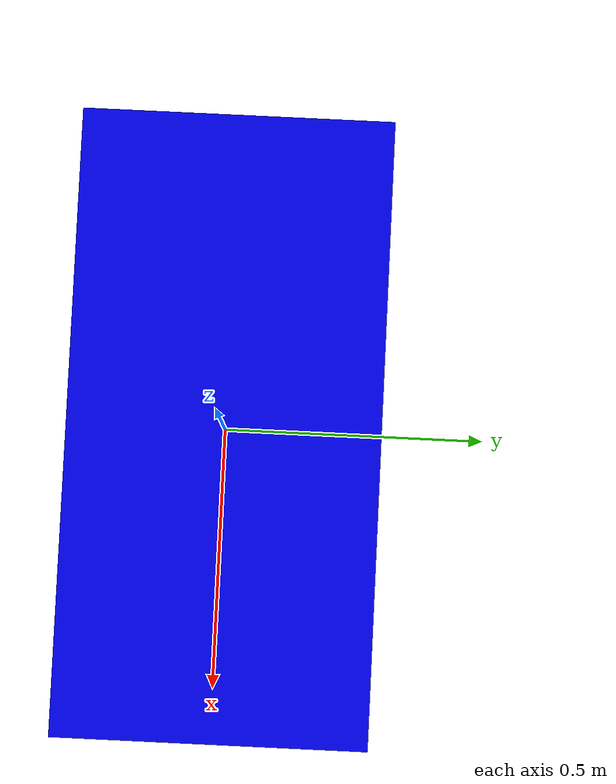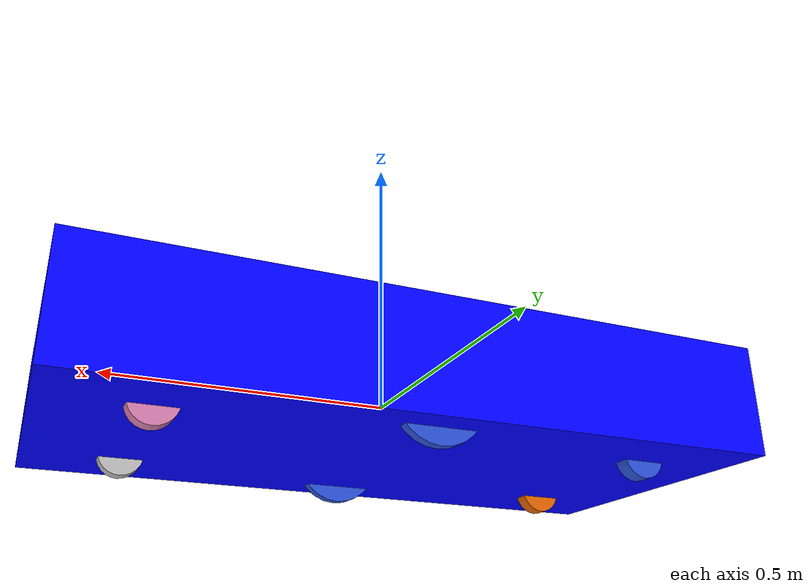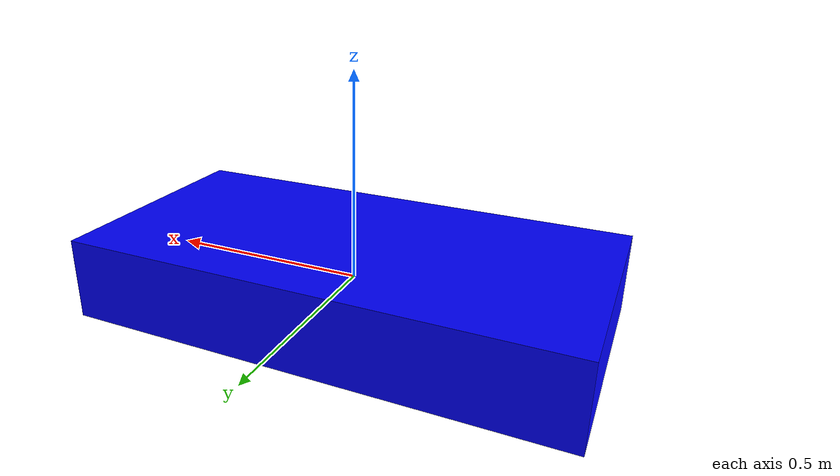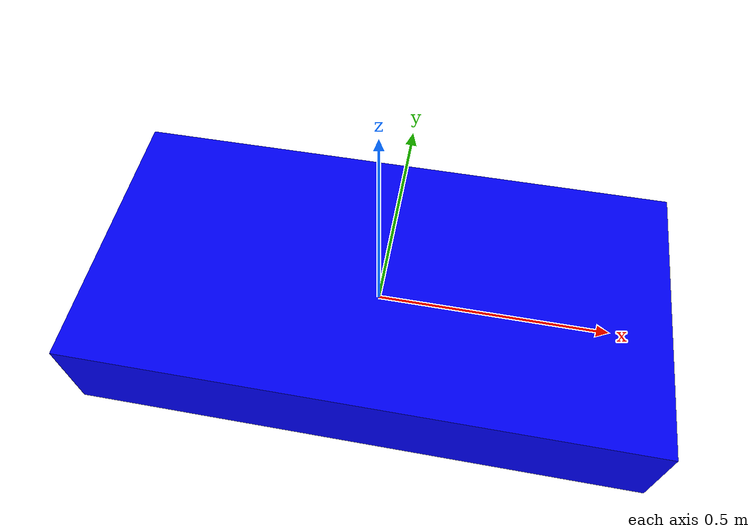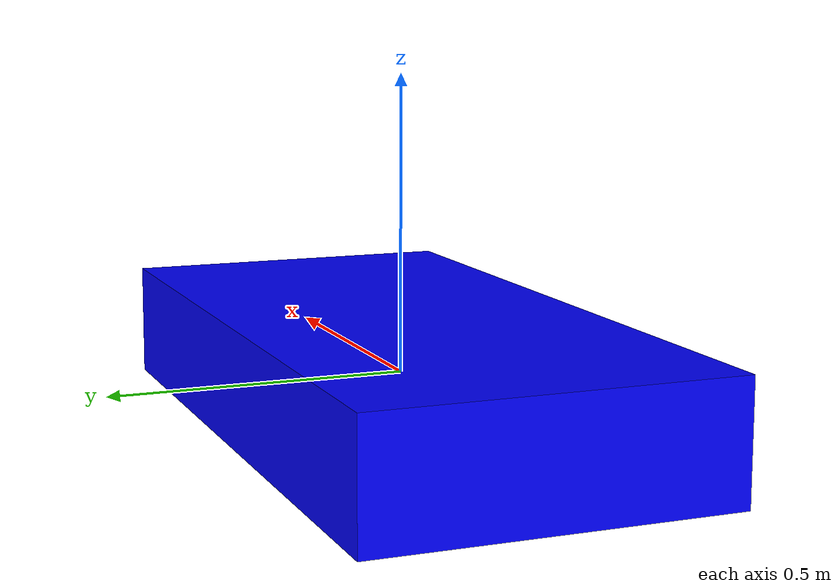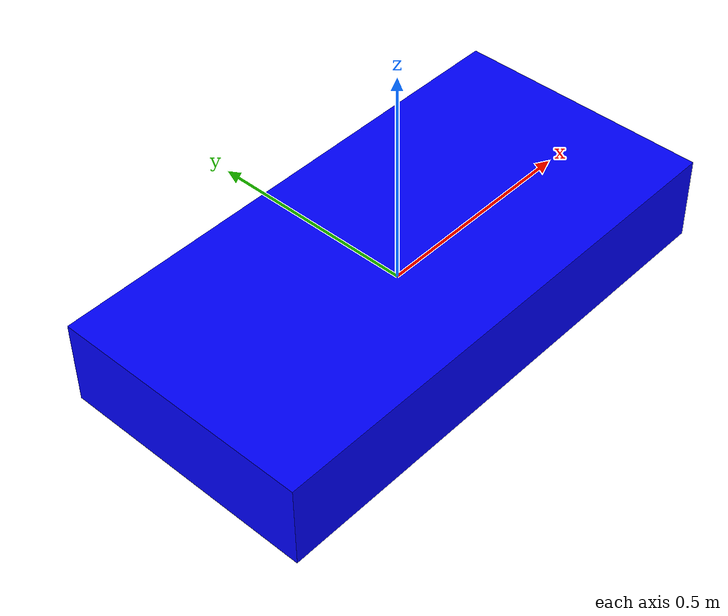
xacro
<?xml version="1.0"?>
<robot xmlns:xacro="http://www.ros.org/wiki/xacro" name="first">

  <xacro:include filename="$(find my_description)/urdf/first.gazebo" />

  <xacro:include filename="$(find my_description)/urdf/base/base.xacro"/>
  <xacro:include filename="$(find my_description)/urdf/wheels/wheel.xacro"/>
  <xacro:include filename="$(find my_description)/urdf/caster_wheels/caster_wheel.xacro"/>
  <xacro:include filename="$(find my_description)/urdf/caster_wheels/caster_wheel_holder.xacro"/>
  <xacro:include filename="$(find my_description)/urdf/caster_wheels/caster_wheel_fix_holder.xacro"/>

  <!--base-->

  <xacro:base/>

  <!--wheels-->

  <xacro:wheel prefix="left" reflect_y="1"/>
  <xacro:wheel prefix="right" reflect_y="-1"/>

  <!--caster_wheels-->

  <xacro:caster_wheel prefix="left_back" reflect_x="-1" reflect_y="1"/>
  <xacro:caster_wheel prefix="right_back" reflect_x="-1" reflect_y="-1"/>
  <xacro:caster_wheel prefix="left_front" reflect_x="1" reflect_y="1"/>
  <xacro:caster_wheel prefix="right_front" reflect_x="1" reflect_y="-1"/>

  <!-- caster_wheel_holder -->

  <xacro:caster_wheel_holder prefix="left_front" reflect_x="1"/>
  <xacro:caster_wheel_holder prefix="right_front" reflect_x="1"/>
  <xacro:caster_wheel_holder prefix="left_back" reflect_x="-1"/>
  <xacro:caster_wheel_holder prefix="right_back" reflect_x="-1"/>

  <!-- caster_wheel_fix_holder -->

  <xacro:caster_wheel_fix_holder prefix="left_front" reflect_x="1" reflect_y="1"/>
  <xacro:caster_wheel_fix_holder prefix="right_front" reflect_x="1" reflect_y="-1"/>
  <xacro:caster_wheel_fix_holder prefix="left_back" reflect_x="-1" reflect_y="1"/>
  <xacro:caster_wheel_fix_holder prefix="right_back" reflect_x="-1" reflect_y="-1"/>

</robot>

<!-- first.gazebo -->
<robot name="first" xmlns:xacro="http://www.ros.org/wiki/xacro" >

    <xacro:property name="body_color" value="Gazebo/Green"/>
    <xacro:property name="wheel_color" value="Gazebo/Blue"/>

    <gazebo>
        <plugin name="control" filename="libgazebo_ros_control.so"/>
    </gazebo>

    <gazebo reference="base_link">
        <material>${body_color}</material>
    </gazebo>

    <gazebo reference="left_wheel">
        <material>${wheel_color}</material>
    </gazebo>

    <gazebo reference="right_wheel">
        <material>${wheel_color}</material>
    </gazebo>

    <gazebo reference="left_back_caster_wheel">
        <material>${wheel_color}</material>
    </gazebo>

    <gazebo reference="left_back_holder">
        <material>${wheel_color}</material>
    </gazebo>

    <gazebo reference="left_back_fix_holder">
        <material>${wheel_color}</material>
    </gazebo>

</robot>

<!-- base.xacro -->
<robot xmlns:xacro="http://www.ros.org/wiki/xacro" name="base">

    <material name="blue">
        <color rgba="0 0 1 1"/>
    </material>

    <xacro:macro name="base">

        <link name="base_footprint"/>

        <link name="base_link">
            <visual>
                <geometry>
                    <box size="1.2 0.6 0.2"/>
                </geometry>
                <material name="blue"/>
            </visual>
            <collision>
                <geometry>
                    <box size="1.2 0.6 0.2"/>
                </geometry>
            </collision>
            <inertial>
                <mass value="10"/>
                <inertia ixx="1.0" ixy="0.0" ixz="0.0" iyy="1.0" iyz="0.0" izz="1.0"/>
            </inertial>
        </link>

        <joint name="base_link_footprint" type="fixed">
            <parent link="base_footprint"/>
            <child link="base_link"/>
            <origin xyz="0 0 0"/>
        </joint>

    </xacro:macro>
</robot>

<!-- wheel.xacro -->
<robot xmlns:xacro="http://www.ros.org/wiki/xacro" name="wheel">

    <xacro:property name="length" value="0.02" />
    <xacro:property name="radius" value="0.08" />

    <xacro:macro name="wheel" params="prefix reflect_y">
        <link name="${prefix}_wheel">
            <visual>
                <geometry>
                    <cylinder length="${length}" radius="${radius}"/>
                </geometry>
                <origin rpy="1.5707 0 0"/>
            </visual>
            <collision>
                <geometry>
                    <cylinder length="${length}" radius="${radius}"/>
                </geometry>
                <origin rpy="1.5707 0 0"/>
            </collision>
            <inertial>
                <mass value="1"/>
                <inertia ixx="1.0" ixy="0.0" ixz="0.0" iyy="1.0" iyz="0.0" izz="1.0"/>
            </inertial>
        </link>

        <joint name="${prefix}_wheel_joint" type="continuous">
            <parent link="base_link"/>
            <child link="${prefix}_wheel"/>
            <origin xyz="0 ${reflect_y*0.2335} -0.05"/>
            <axis xyz="0.0 1.0 0.0"/>
        </joint>

    </xacro:macro>
</robot>

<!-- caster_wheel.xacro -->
<robot xmlns:xacro="http://www.ros.org/wiki/xacro" name="caster_wheel">

    <xacro:property name="length" value="0.02" />
    <xacro:property name="radius" value="0.08" />

    <xacro:macro name="caster_wheel" params="prefix reflect_x reflect_y">

        <link name="${prefix}_caster_wheel">
            <visual>
                <geometry>
                    <cylinder length="0.03" radius="0.04"/>
                </geometry>
                    <origin rpy="1.5707 0 0"/>
            </visual>
            <collision>
                <geometry>
                    <cylinder length="0.03" radius="0.04"/>
                </geometry>
                    <origin rpy="1.5707 0 0"/>
            </collision>
            <inertial>
                <mass value="0.5"/>
                <inertia ixx="0.0" ixy="0.0" ixz="0.0" iyy="0.0" iyz="0.0" izz="0.0"/>
            </inertial>
            <axis xyz="0.0 1.0 0.0"/>
        </link>

        <joint name="${prefix}_caster_wheel_joint" type="continuous">
            <parent link="${prefix}_holder"/>
            <child link="${prefix}_caster_wheel"/>
            <origin xyz="${reflect_x*0.0565} 0 -0.0565"/>
            <axis xyz="0 1.0 0"/>
        </joint>

    </xacro:macro>
</robot>

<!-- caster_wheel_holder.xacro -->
<robot xmlns:xacro="http://www.ros.org/wiki/xacro" name="caster_wheel_holder">

    <xacro:macro name="caster_wheel_holder" params="prefix reflect_x">

          <link name="${prefix}_holder">
            <visual>
                <geometry>
                    <box size="0.02 0.08 0.01"/>
                </geometry>
                <origin rpy="1.5707 ${reflect_x*-0.7853} 0" xyz="${reflect_x*0.0283} 0.0 -0.0283"/>
            </visual>
            <collision>
                <geometry>
                    <box size="0.02 0.08 0.01"/>
                </geometry>
                <origin rpy="1.5707 ${reflect_x*-0.7853} 0" xyz="${reflect_x*0.0283} 0.0 -0.0283"/>
            </collision>
            <inertial>
                <mass value="0.2"/>
                <inertia ixx="0.0" ixy="0.0" ixz="0.0" iyy="0.0" iyz="0.0" izz="0.0"/>
            </inertial>
        </link>

        <joint name="${prefix}_holder_joint" type="continuous">
            <axis rpy="0 0 0" xyz="0 0 1"/>
            <parent link="${prefix}_fix_holder"/>
            <child link="${prefix}_holder"/>
            <origin xyz="0 0 0"/>
        </joint>

    </xacro:macro>
</robot>

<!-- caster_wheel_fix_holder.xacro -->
<robot xmlns:xacro="http://www.ros.org/wiki/xacro" name="caster_wheel_fix_holder">

    <xacro:macro name="caster_wheel_fix_holder" params="prefix reflect_x reflect_y">

        <link name="${prefix}_fix_holder">
            <visual>
                <geometry>
                    <box size="0.04 0.04 0.01"/>
                </geometry>
                <origin rpy="0 0 0" xyz="0 0 0"/>
            </visual>
            <collision>
                <geometry>
                    <box size="0.04 0.04 0.01"/>
                </geometry>
                <origin rpy="0 0 0" xyz="0 0 0"/>
            </collision>
            <inertial>
                <mass value="0.2"/>
                <inertia ixx="1.0" ixy="0.0" ixz="0.0" iyy="1.0" iyz="0.0" izz="1.0"/>
            </inertial>
        </link>

        <joint name="${prefix}_fix_holder_joint" type="fixed">
            <parent link="base_link"/>
            <child link="${prefix}_fix_holder"/>
            <origin xyz="${reflect_x*0.3749} ${reflect_y*0.170} -0.0335"/>
        </joint>

    </xacro:macro>
</robot>
